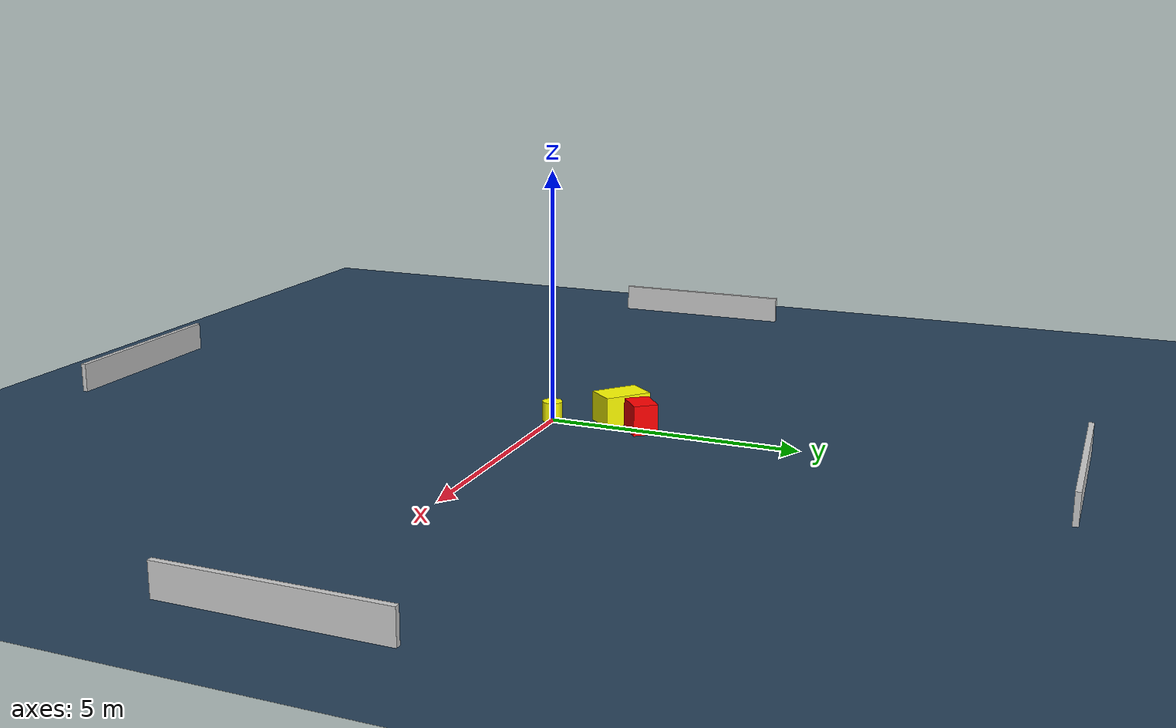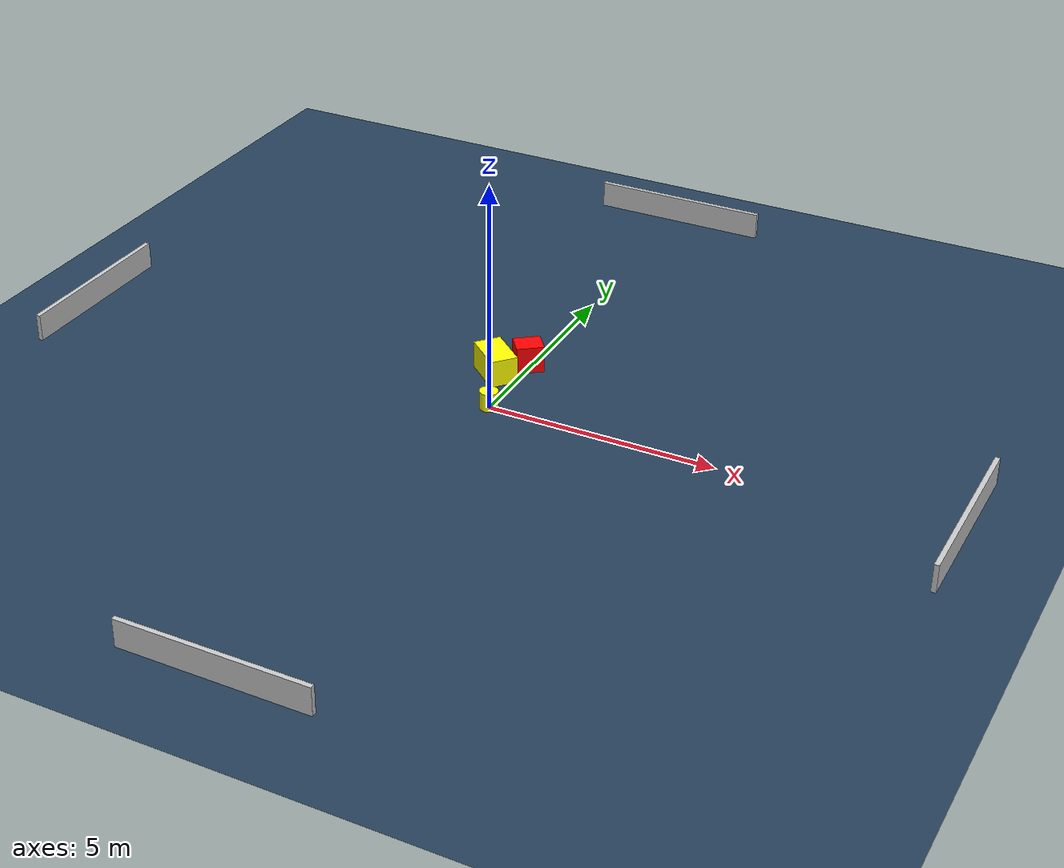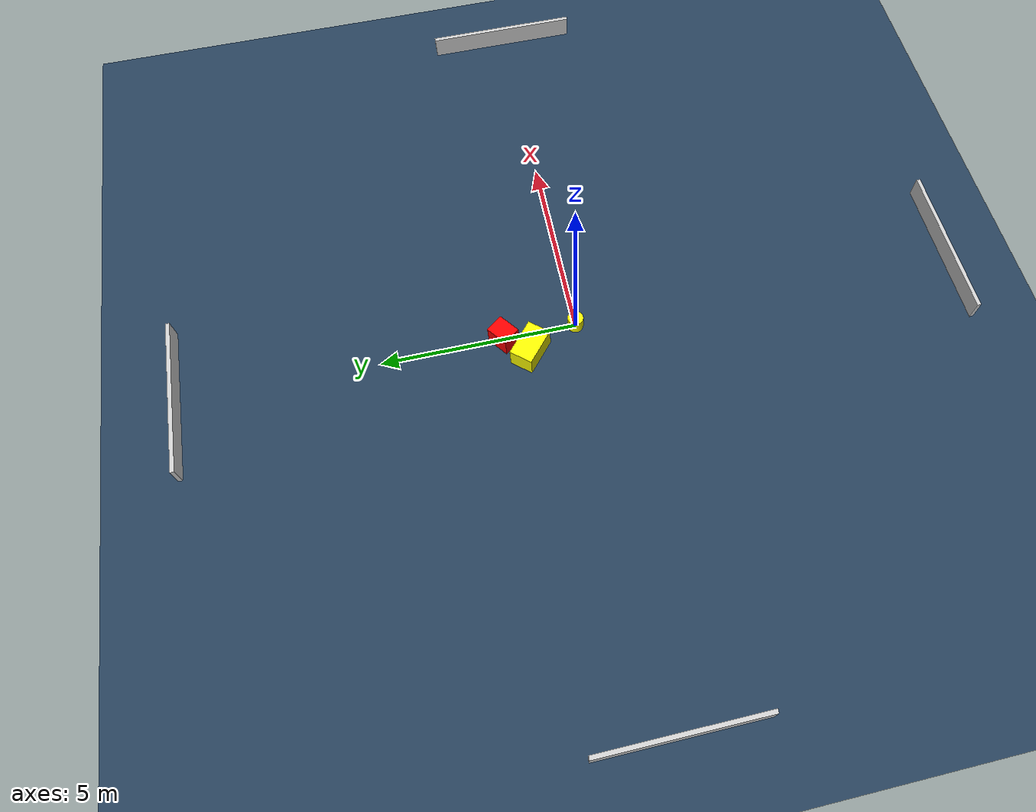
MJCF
<?xml version="1.0" ?>
<mujoco model="generated_environment">
  <option timestep="0.01" integrator="RK4" cone="elliptic"/>
  <default>
    <geom density="1"/>
  </default>
  <asset>
    <texture builtin="gradient" height="3072" name="skybox" rgb1="0.3 0.5 0.7" rgb2="0 0 0" type="skybox" width="512"/>
    <texture builtin="checker" height="300" name="groundplane" rgb1="0.2 0.3 0.4" rgb2="0.1 0.2 0.3" type="2d" width="300"/>
    <material name="groundplane" reflectance="0.2" texrepeat="5 5" texture="groundplane"/>
  </asset>
  <worldbody>
    <light dir="0 0 -1" directional="true" pos="0 0 1.5"/>
    <geom condim="3" friction="0.5 0.005 0.001" material="groundplane" name="floor" pos="0 0 0" size="0 0 0.05" type="plane"/>
    <body name="walls">
      <geom name="wall_1" condim="4" pos="-10.0 0.0 0.3" rgba="0.800000011920929 0.800000011920929 0.800000011920929 1.0" size="0.05 2.0 0.3" type="box"/>
      <geom name="wall_2" condim="4" pos="10.0 0.0 0.3" rgba="0.800000011920929 0.800000011920929 0.800000011920929 1.0" size="0.05 2.0 0.3" type="box"/>
      <geom name="wall_3" condim="4" pos="0.0 -10.0 0.3" rgba="0.800000011920929 0.800000011920929 0.800000011920929 1.0" size="2.0 0.05 0.3" type="box"/>
      <geom name="wall_4" condim="4" pos="0.0 10.0 0.3" rgba="0.800000011920929 0.800000011920929 0.800000011920929 1.0" size="2.0 0.05 0.3" type="box"/>
    </body>
    <body name="robot">
      <joint name="joint_x" type="slide" pos="0 0 0" axis="1 0 0"/>
      <joint name="joint_y" type="slide" pos="0 0 0" axis="0 1 0"/>
      <geom name="robot" type="cylinder" pos="0.0 0.0 0.2" size="0.2 0.2 0.0" mass="5.0" friction="1.0 0.005 0.0001" condim="4" rgba="1.0 1.0 0.0 1.0"/>
    </body>
    <body name="obstacle_1_movable">
      <geom name="obstacle_1_movable" condim="4" pos="-0.5093038562902661 1.2707963852125055 0.3" euler="0 0 49.57288112738939" friction="0.0 0.005 0.001" rgba="1.0 1.0 0.0 1.0" size="0.30343779881097344 0.4821536942271296 0.3" type="box" mass="0.1"/>
      <joint type="free"/>
    </body>
    <body name="obstacle_2_static">
      <geom name="obstacle_2_static" condim="4" pos="-0.030470530298386346 1.859597567920719 0.3" euler="0 0 217.66932017359298" friction="0.0 0.005 0.001" rgba="1.0 0.0 0.0 1.0" size="0.2984218653687487 0.24601084832506848 0.3" type="box"/>
    </body>
  </worldbody>
  <actuator>
    <motor name="actuator_x" joint="joint_x" gear="1" ctrlrange="-1 1"/>
    <motor name="actuator_y" joint="joint_y" gear="1" ctrlrange="-1 1"/>
  </actuator>
</mujoco>
